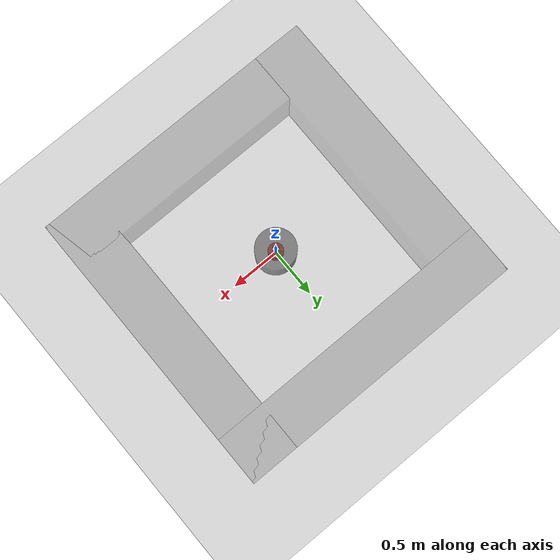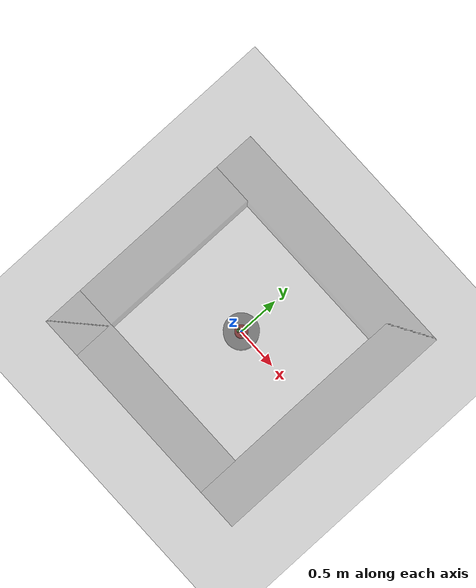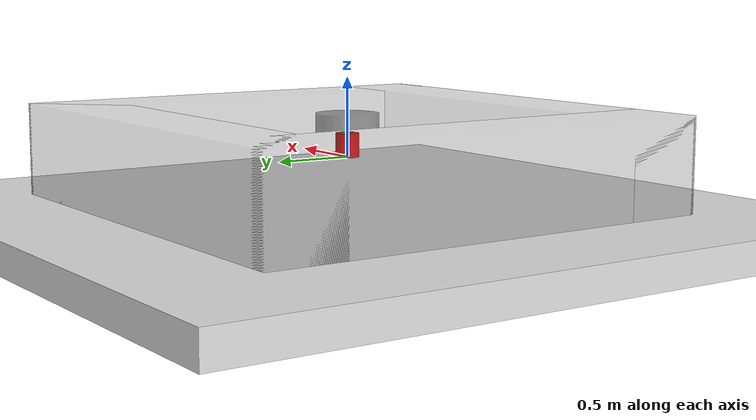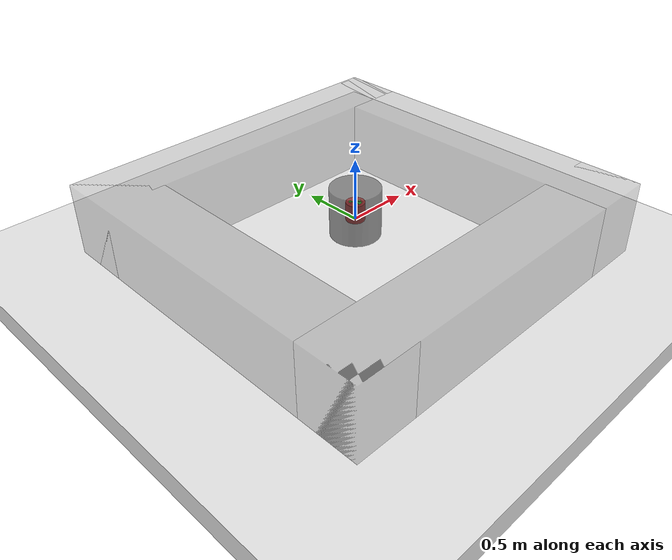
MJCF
<mujoco>
    <option gravity="0 0 0" timestep="0.01"/>
<default>
    <geom rgba="0 0 0 1"/>
</default>
    <worldbody>
    <light diffuse=".2 .2 .2" pos="0 0 1.3" dir="0 0 -1" mode="track"/>
    <light diffuse=".2 .2 .2" pos="1 1 1.3" dir="0 0 -1" mode="track"/>
    <light diffuse=".2 .2 .2" pos="1 -1 1.3" dir="0 0 -1" mode="track"/>
    <light diffuse=".2 .2 .2" pos="-1 1 1.3" dir="0 0 -1" mode="track"/>
    <light diffuse=".2 .2 .2" pos="-1 -1 1.3" dir="0 0 -1" mode="track"/>
    <light diffuse=".2 .2 .2" pos="0 0 20" dir="0 0 -1" mode="track"/>
    <body>
      <geom name='floor' pos='0 0 -0.4' size='10 10 .1' mass="10000" type='box' condim='3' rgba=".9 .9 .9 1" />
    <camera name="center" mode="fixed" pos="0 0 5" />
     <camera name="30" mode="fixed" pos="0 -2.5 5"  axisangle="1 0 0 30"    />
    </body>

    <body name="predator0" pos="0 0 0.075">
            <joint axis="1 0 0" damping="0" frictionloss="0" name="predator00" pos="0 0 0" type="slide"/>
            <joint axis="0 1 0" damping="0" frictionloss="0" name="predator01" pos="0 0 0" type="slide"/>
            <geom type="cylinder" size="0.075 0.075" mass="1" conaffinity="1" solimp="0.9 0.9999 0.001 0.5 1" solref="0.5 0.2" rgba="1 0 0 1"/>
            <site name="predator0" pos="-0.1 0 0.05" type="sphere" size="0.001"/>
    </body>

    <body name="prey" pos="0 0 0.075">
            <joint axis="1 0 0" damping="0" frictionloss="0" name="prey0" pos="0 0 0" type="slide"/>
            <joint axis="0 1 0" damping="0" frictionloss="0" name="prey1" pos="0 0 0" type="slide"/>
            <geom type ="cylinder" size="0.05 0.075" mass="1" conaffinity="1" solimp="0.9 0.9999 0.001 0.5 1" solref="0.5 0.2" rgba="0 1 0 1"/>
            <site name="prey" pos="0.5 0 0.075" type="sphere" size="0.001"/>
    </body>

    <body name="block0" pos="0 0 0.075">
            <geom type="cylinder" size="0.2 0.2" mass="1" conaffinity="1" solimp="0.9 0.9999 0.001 0.5 1" solref="0.5 0.2" rgba="0.4 0.4 0.4 0.7" condim='3'/>

    </body>
    <body name="block1" pos="0 0 0.075">
        <geom type="cylinder" size="0.2 0.2" mass="1" conaffinity="1" solimp="0.9 0.9999 0.001 0.5 1" solref="0.5 0.2" rgba="0.4 0.4 0.4 0.7" condim='3'/>

    </body>

    <body>
      <geom name='wall1' pos='-1.25 0 -0.2' size='.25 1.5 0.5' mass="10000" type='box' rgba="0.4 0.4 0.4 0.3" condim='3'/>
    </body>
    <body>
      <geom name='wall2' pos='1.25 0 -0.2' size='.25 1.5 0.5' mass="10000" type='box' rgba="0.4 0.4 0.4 0.3" condim='3'/>
    </body>
    <body>
      <geom name='wall3' pos='0 -1.25 -0.2' size='1.5 .25 0.5' mass="10000" type='box' rgba="0.4 0.4 0.4 0.3" condim='3'/>
    </body>
    <body>
      <geom name='wall4' pos='0 1.25 -0.2' size='1.5 .25 0.5' mass="10000" type='box' rgba="0.4 0.4 0.4 0.3" condim='3'/>
    </body>

    </worldbody>

    <actuator>
        <motor gear="1" joint="predator00"/>
        <motor gear="1" joint="predator01"/>

        <motor gear="1" joint="prey0" />
        <motor gear="1" joint="prey1" />

    </actuator>
</mujoco>
